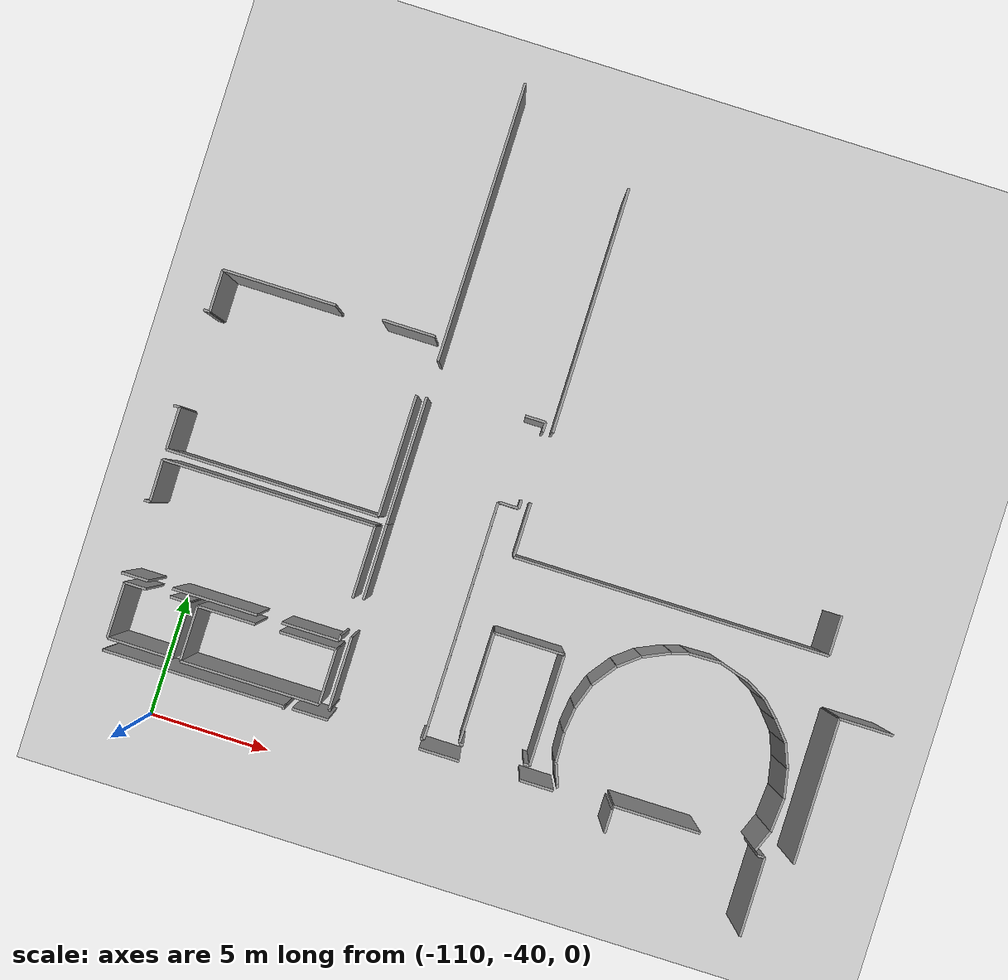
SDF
<sdf version="1.6">
 <world name="default">
  <model name="ground_plane">
   <static>1</static>
   <link name="link">
    <collision name="collision">
     <geometry><plane><normal>0 0 1</normal><size>100 100</size></plane></geometry>
     <surface><friction><ode><mu>100</mu><mu2>50</mu2></ode></friction></surface>
    </collision>
    <visual name="visual">
     <cast_shadows>0</cast_shadows>
     <geometry><plane><normal>0 0 1</normal><size>100 100</size></plane></geometry>
     <material>
      <script><uri>file://media/materials/scripts/gazebo.material</uri><name>Gazebo/Grey</name></script>
     </material>
    </visual>
   </link>
  </model>
  <model name="0510035520_A_40_1_103">
   <static>1</static>
   <link name="Wall_318">
    <collision name="Wall_318_Collision">
     <geometry><box><size>1.63755306121 0.1 2.5</size></box></geometry>
     <pose>0.818776530606 0 1.25 0 0 0</pose>
    </collision>
    <visual name="Wall_318_Visual">
     <pose>0.818776530606 0 1.25 0 0 0</pose>
     <geometry><box><size>1.63755306121 0.1 2.5</size></box></geometry>
     <material>
      <script><uri>file://media/materials/scripts/gazebo.material</uri><name>Gazebo/Grey</name></script>
      <ambient>1 1 1 1</ambient>
     </material>
    </visual>
    <pose>27.2904359744 -96.3057341007 0 0 0 -1.57079632679</pose>
   </link>
   <link name="Wall_319">
    <collision name="Wall_319_Collision">
     <geometry><box><size>12.8755528201 0.1 2.5</size></box></geometry>
     <pose>6.43777641005 0 1.25 0 0 0</pose>
    </collision>
    <visual name="Wall_319_Visual">
     <pose>6.43777641005 0 1.25 0 0 0</pose>
     <geometry><box><size>12.8755528201 0.1 2.5</size></box></geometry>
     <material>
      <script><uri>file://media/materials/scripts/gazebo.material</uri><name>Gazebo/Grey</name></script>
      <ambient>1 1 1 1</ambient>
     </material>
    </visual>
    <pose>27.2904359744 -97.9432871619 0 0 0 3.14159265359</pose>
   </link>
   <link name="Wall_320">
    <collision name="Wall_320_Collision">
     <geometry><box><size>2.21470675947 0.1 2.5</size></box></geometry>
     <pose>1.10735337974 0 1.25 0 0 0</pose>
    </collision>
    <visual name="Wall_320_Visual">
     <pose>1.10735337974 0 1.25 0 0 0</pose>
     <geometry><box><size>2.21470675947 0.1 2.5</size></box></geometry>
     <material>
      <script><uri>file://media/materials/scripts/gazebo.material</uri><name>Gazebo/Grey</name></script>
      <ambient>1 1 1 1</ambient>
     </material>
    </visual>
    <pose>14.4148831543 -97.9432871619 0 0 0 1.57079632679</pose>
   </link>
   <link name="Wall_321">
    <collision name="Wall_321_Collision">
     <geometry><box><size>9.96772142665 0.1 2.5</size></box></geometry>
     <pose>4.98386071332 0 1.25 0 0 0</pose>
    </collision>
    <visual name="Wall_321_Visual">
     <pose>4.98386071332 0 1.25 0 0 0</pose>
     <geometry><box><size>9.96772142665 0.1 2.5</size></box></geometry>
     <material>
      <script><uri>file://media/materials/scripts/gazebo.material</uri><name>Gazebo/Grey</name></script>
      <ambient>1 1 1 1</ambient>
     </material>
    </visual>
    <pose>14.4148831543 -92.8730147651 0 0 0 1.57270603343</pose>
   </link>
   <link name="Wall_322">
    <collision name="Wall_322_Collision">
     <geometry><box><size>8.67278760922 0.1 2.5</size></box></geometry>
     <pose>4.33639380461 0 1.25 0 0 0</pose>
    </collision>
    <visual name="Wall_322_Visual">
     <pose>4.33639380461 0 1.25 0 0 0</pose>
     <geometry><box><size>8.67278760922 0.1 2.5</size></box></geometry>
     <material>
      <script><uri>file://media/materials/scripts/gazebo.material</uri><name>Gazebo/Grey</name></script>
      <ambient>1 1 1 1</ambient>
     </material>
    </visual>
    <pose>0.227155919061 -98.4130811353 0 0 0 0.0</pose>
   </link>
   <link name="Wall_323">
    <collision name="Wall_323_Collision">
     <geometry><box><size>2.93576817406 0.1 2.5</size></box></geometry>
     <pose>1.46788408703 0 1.25 0 0 0</pose>
    </collision>
    <visual name="Wall_323_Visual">
     <pose>1.46788408703 0 1.25 0 0 0</pose>
     <geometry><box><size>2.93576817406 0.1 2.5</size></box></geometry>
     <material>
      <script><uri>file://media/materials/scripts/gazebo.material</uri><name>Gazebo/Grey</name></script>
      <ambient>1 1 1 1</ambient>
     </material>
    </visual>
    <pose>8.89994352828 -98.4130811353 0 0 0 -1.57079632679</pose>
   </link>
   <link name="Wall_324">
    <collision name="Wall_324_Collision">
     <geometry><box><size>0.229186363031 0.1 2.5</size></box></geometry>
     <pose>0.114593181515 0 1.25 0 0 0</pose>
    </collision>
    <visual name="Wall_324_Visual">
     <pose>0.114593181515 0 1.25 0 0 0</pose>
     <geometry><box><size>0.229186363031 0.1 2.5</size></box></geometry>
     <material>
      <script><uri>file://media/materials/scripts/gazebo.material</uri><name>Gazebo/Grey</name></script>
      <ambient>1 1 1 1</ambient>
     </material>
    </visual>
    <pose>8.89994352828 -102.867367593 0 0 0 -1.57079632679</pose>
   </link>
   <link name="Wall_325">
    <collision name="Wall_325_Collision">
     <geometry><box><size>2.35049269992 0.1 2.5</size></box></geometry>
     <pose>1.17524634996 0 1.25 0 0 0</pose>
    </collision>
    <visual name="Wall_325_Visual">
     <pose>1.17524634996 0 1.25 0 0 0</pose>
     <geometry><box><size>2.35049269992 0.1 2.5</size></box></geometry>
     <material>
      <script><uri>file://media/materials/scripts/gazebo.material</uri><name>Gazebo/Grey</name></script>
      <ambient>1 1 1 1</ambient>
     </material>
    </visual>
    <pose>8.89994352828 -103.096553956 0 0 0 3.14159265359</pose>
   </link>
   <link name="Wall_326">
    <collision name="Wall_326_Collision">
     <geometry><box><size>3.46089174561 0.1 2.5</size></box></geometry>
     <pose>1.73044587281 0 1.25 0 0 0</pose>
    </collision>
    <visual name="Wall_326_Visual">
     <pose>1.73044587281 0 1.25 0 0 0</pose>
     <geometry><box><size>3.46089174561 0.1 2.5</size></box></geometry>
     <material>
      <script><uri>file://media/materials/scripts/gazebo.material</uri><name>Gazebo/Grey</name></script>
      <ambient>1 1 1 1</ambient>
     </material>
    </visual>
    <pose>5.55478708891 -103.096553956 0 0 0 3.14159265359</pose>
   </link>
   <link name="Wall_327">
    <collision name="Wall_327_Collision">
     <geometry><box><size>1.09415549394 0.1 2.5</size></box></geometry>
     <pose>0.547077746969 0 1.25 0 0 0</pose>
    </collision>
    <visual name="Wall_327_Visual">
     <pose>0.547077746969 0 1.25 0 0 0</pose>
     <geometry><box><size>1.09415549394 0.1 2.5</size></box></geometry>
     <material>
      <script><uri>file://media/materials/scripts/gazebo.material</uri><name>Gazebo/Grey</name></script>
      <ambient>1 1 1 1</ambient>
     </material>
    </visual>
    <pose>1.10684576875 -103.096553956 0 0 0 3.14159265359</pose>
   </link>
   <link name="Wall_328">
    <collision name="Wall_328_Collision">
     <geometry><box><size>0.232485834481 0.1 2.5</size></box></geometry>
     <pose>0.11624291724 0 1.25 0 0 0</pose>
    </collision>
    <visual name="Wall_328_Visual">
     <pose>0.11624291724 0 1.25 0 0 0</pose>
     <geometry><box><size>0.232485834481 0.1 2.5</size></box></geometry>
     <material>
      <script><uri>file://media/materials/scripts/gazebo.material</uri><name>Gazebo/Grey</name></script>
      <ambient>1 1 1 1</ambient>
     </material>
    </visual>
    <pose>0.0126902748079 -100.13667426 0 0 0 0.0</pose>
   </link>
   <link name="Wall_329">
    <collision name="Wall_329_Collision">
     <geometry><box><size>1.72368732251 0.1 2.5</size></box></geometry>
     <pose>0.861843661253 0 1.25 0 0 0</pose>
    </collision>
    <visual name="Wall_329_Visual">
     <pose>0.861843661253 0 1.25 0 0 0</pose>
     <geometry><box><size>1.72368732251 0.1 2.5</size></box></geometry>
     <material>
      <script><uri>file://media/materials/scripts/gazebo.material</uri><name>Gazebo/Grey</name></script>
      <ambient>1 1 1 1</ambient>
     </material>
    </visual>
    <pose>0.245176109289 -100.13667426 0 0 0 1.58125095987</pose>
   </link>
   <link name="Wall_330">
    <collision name="Wall_330_Collision">
     <geometry><box><size>2.25836130481 0.1 2.5</size></box></geometry>
     <pose>1.12918065241 0 1.25 0 0 0</pose>
    </collision>
    <visual name="Wall_330_Visual">
     <pose>1.12918065241 0 1.25 0 0 0</pose>
     <geometry><box><size>2.25836130481 0.1 2.5</size></box></geometry>
     <material>
      <script><uri>file://media/materials/scripts/gazebo.material</uri><name>Gazebo/Grey</name></script>
      <ambient>1 1 1 1</ambient>
     </material>
    </visual>
    <pose>0.245176109289 -105.684862406 0 0 0 1.57079632679</pose>
   </link>
   <link name="Wall_331">
    <collision name="Wall_331_Collision">
     <geometry><box><size>0.873090906784 0.1 2.5</size></box></geometry>
     <pose>0.436545453392 0 1.25 0 0 0</pose>
    </collision>
    <visual name="Wall_331_Visual">
     <pose>0.436545453392 0 1.25 0 0 0</pose>
     <geometry><box><size>0.873090906784 0.1 2.5</size></box></geometry>
     <material>
      <script><uri>file://media/materials/scripts/gazebo.material</uri><name>Gazebo/Grey</name></script>
      <ambient>1 1 1 1</ambient>
     </material>
    </visual>
    <pose>0.245176109289 -103.426501101 0 0 0 0.0</pose>
   </link>
   <link name="Wall_332">
    <collision name="Wall_332_Collision">
     <geometry><box><size>0.786289427098 0.1 2.5</size></box></geometry>
     <pose>0.393144713549 0 1.25 0 0 0</pose>
    </collision>
    <visual name="Wall_332_Visual">
     <pose>0.393144713549 0 1.25 0 0 0</pose>
     <geometry><box><size>0.786289427098 0.1 2.5</size></box></geometry>
     <material>
      <script><uri>file://media/materials/scripts/gazebo.material</uri><name>Gazebo/Grey</name></script>
      <ambient>1 1 1 1</ambient>
     </material>
    </visual>
    <pose>2.09947906422 -103.426501101 0 0 0 0.0</pose>
   </link>
   <link name="Wall_333">
    <collision name="Wall_333_Collision">
     <geometry><box><size>2.2723206071 0.1 2.5</size></box></geometry>
     <pose>1.13616030355 0 1.25 0 0 0</pose>
    </collision>
    <visual name="Wall_333_Visual">
     <pose>1.13616030355 0 1.25 0 0 0</pose>
     <geometry><box><size>2.2723206071 0.1 2.5</size></box></geometry>
     <material>
      <script><uri>file://media/materials/scripts/gazebo.material</uri><name>Gazebo/Grey</name></script>
      <ambient>1 1 1 1</ambient>
     </material>
    </visual>
    <pose>2.88576849132 -103.426501101 0 0 0 -1.57079632679</pose>
   </link>
   <link name="Wall_334">
    <collision name="Wall_334_Collision">
     <geometry><box><size>2.6406292792 0.1 2.5</size></box></geometry>
     <pose>1.3203146396 0 1.25 0 0 0</pose>
    </collision>
    <visual name="Wall_334_Visual">
     <pose>1.3203146396 0 1.25 0 0 0</pose>
     <geometry><box><size>2.6406292792 0.1 2.5</size></box></geometry>
     <material>
      <script><uri>file://media/materials/scripts/gazebo.material</uri><name>Gazebo/Grey</name></script>
      <ambient>1 1 1 1</ambient>
     </material>
    </visual>
    <pose>2.88576849132 -105.698821708 0 0 0 3.13630627454</pose>
   </link>
   <link name="Wall_335">
    <collision name="Wall_335_Collision">
     <geometry><box><size>2.24871669596 0.1 2.5</size></box></geometry>
     <pose>1.12435834798 0 1.25 0 0 0</pose>
    </collision>
    <visual name="Wall_335_Visual">
     <pose>1.12435834798 0 1.25 0 0 0</pose>
     <geometry><box><size>2.24871669596 0.1 2.5</size></box></geometry>
     <material>
      <script><uri>file://media/materials/scripts/gazebo.material</uri><name>Gazebo/Grey</name></script>
      <ambient>1 1 1 1</ambient>
     </material>
    </visual>
    <pose>3.2240912177 -105.707958706 0 0 0 1.57079632679</pose>
   </link>
   <link name="Wall_336">
    <collision name="Wall_336_Collision">
     <geometry><box><size>2.36242155824 0.1 2.5</size></box></geometry>
     <pose>1.18121077912 0 1.25 0 0 0</pose>
    </collision>
    <visual name="Wall_336_Visual">
     <pose>1.18121077912 0 1.25 0 0 0</pose>
     <geometry><box><size>2.36242155824 0.1 2.5</size></box></geometry>
     <material>
      <script><uri>file://media/materials/scripts/gazebo.material</uri><name>Gazebo/Grey</name></script>
      <ambient>1 1 1 1</ambient>
     </material>
    </visual>
    <pose>3.2240912177 -103.45924201 0 0 0 0.0</pose>
   </link>
   <link name="Wall_337">
    <collision name="Wall_337_Collision">
     <geometry><box><size>2.31521373595 0.1 2.5</size></box></geometry>
     <pose>1.15760686798 0 1.25 0 0 0</pose>
    </collision>
    <visual name="Wall_337_Visual">
     <pose>1.15760686798 0 1.25 0 0 0</pose>
     <geometry><box><size>2.31521373595 0.1 2.5</size></box></geometry>
     <material>
      <script><uri>file://media/materials/scripts/gazebo.material</uri><name>Gazebo/Grey</name></script>
      <ambient>1 1 1 1</ambient>
     </material>
    </visual>
    <pose>6.57762323843 -103.45924201 0 0 0 0.0</pose>
   </link>
   <link name="Wall_338">
    <collision name="Wall_338_Collision">
     <geometry><box><size>2.25023952894 0.1 2.5</size></box></geometry>
     <pose>1.12511976447 0 1.25 0 0 0</pose>
    </collision>
    <visual name="Wall_338_Visual">
     <pose>1.12511976447 0 1.25 0 0 0</pose>
     <geometry><box><size>2.25023952894 0.1 2.5</size></box></geometry>
     <material>
      <script><uri>file://media/materials/scripts/gazebo.material</uri><name>Gazebo/Grey</name></script>
      <ambient>1 1 1 1</ambient>
     </material>
    </visual>
    <pose>8.89283697438 -103.45924201 0 0 0 -1.57079632679</pose>
   </link>
   <link name="Wall_339">
    <collision name="Wall_339_Collision">
     <geometry><box><size>5.66874596123 0.1 2.5</size></box></geometry>
     <pose>2.83437298062 0 1.25 0 0 0</pose>
    </collision>
    <visual name="Wall_339_Visual">
     <pose>2.83437298062 0 1.25 0 0 0</pose>
     <geometry><box><size>5.66874596123 0.1 2.5</size></box></geometry>
     <material>
      <script><uri>file://media/materials/scripts/gazebo.material</uri><name>Gazebo/Grey</name></script>
      <ambient>1 1 1 1</ambient>
     </material>
    </visual>
    <pose>8.89283697438 -105.709481539 0 0 0 3.14132401693</pose>
   </link>
   <link name="Wall_340">
    <collision name="Wall_340_Collision">
     <geometry><box><size>1.72511595739 0.1 2.5</size></box></geometry>
     <pose>0.862557978693 0 1.25 0 0 0</pose>
    </collision>
    <visual name="Wall_340_Visual">
     <pose>0.862557978693 0 1.25 0 0 0</pose>
     <geometry><box><size>1.72511595739 0.1 2.5</size></box></geometry>
     <material>
      <script><uri>file://media/materials/scripts/gazebo.material</uri><name>Gazebo/Grey</name></script>
      <ambient>1 1 1 1</ambient>
     </material>
    </visual>
    <pose>0.251775052189 -97.9948096776 0 0 0 1.57079632679</pose>
   </link>
   <link name="Wall_341">
    <collision name="Wall_341_Collision">
     <geometry><box><size>0.251775052189 0.1 2.5</size></box></geometry>
     <pose>0.125887526094 0 1.25 0 0 0</pose>
    </collision>
    <visual name="Wall_341_Visual">
     <pose>0.125887526094 0 1.25 0 0 0</pose>
     <geometry><box><size>0.251775052189 0.1 2.5</size></box></geometry>
     <material>
      <script><uri>file://media/materials/scripts/gazebo.material</uri><name>Gazebo/Grey</name></script>
      <ambient>1 1 1 1</ambient>
     </material>
    </visual>
    <pose>0.251775052189 -96.2696937202 0 0 0 3.14159265359</pose>
   </link>
   <link name="Wall_342">
    <collision name="Wall_342_Collision">
     <geometry><box><size>0.252028857685 0.1 2.5</size></box></geometry>
     <pose>0.126014428842 0 1.25 0 0 0</pose>
    </collision>
    <visual name="Wall_342_Visual">
     <pose>0.126014428842 0 1.25 0 0 0</pose>
     <geometry><box><size>0.252028857685 0.1 2.5</size></box></geometry>
     <material>
      <script><uri>file://media/materials/scripts/gazebo.material</uri><name>Gazebo/Grey</name></script>
      <ambient>1 1 1 1</ambient>
     </material>
    </visual>
    <pose>0.0 -92.3730179377 0 0 0 0.0</pose>
   </link>
   <link name="Wall_343">
    <collision name="Wall_343_Collision">
     <geometry><box><size>1.70938001662 0.1 2.5</size></box></geometry>
     <pose>0.854690008312 0 1.25 0 0 0</pose>
    </collision>
    <visual name="Wall_343_Visual">
     <pose>0.854690008312 0 1.25 0 0 0</pose>
     <geometry><box><size>1.70938001662 0.1 2.5</size></box></geometry>
     <material>
      <script><uri>file://media/materials/scripts/gazebo.material</uri><name>Gazebo/Grey</name></script>
      <ambient>1 1 1 1</ambient>
     </material>
    </visual>
    <pose>0.252028857685 -92.3730179377 0 0 0 1.57079632679</pose>
   </link>
   <link name="Wall_344">
    <collision name="Wall_344_Collision">
     <geometry><box><size>4.60327028382 0.1 2.5</size></box></geometry>
     <pose>2.30163514191 0 1.25 0 0 0</pose>
    </collision>
    <visual name="Wall_344_Visual">
     <pose>2.30163514191 0 1.25 0 0 0</pose>
     <geometry><box><size>4.60327028382 0.1 2.5</size></box></geometry>
     <material>
      <script><uri>file://media/materials/scripts/gazebo.material</uri><name>Gazebo/Grey</name></script>
      <ambient>1 1 1 1</ambient>
     </material>
    </visual>
    <pose>0.252028857685 -90.6636379211 0 0 0 0.0</pose>
   </link>
   <link name="Wall_345">
    <collision name="Wall_345_Collision">
     <geometry><box><size>2.14211838757 0.1 2.5</size></box></geometry>
     <pose>1.07105919379 0 1.25 0 0 0</pose>
    </collision>
    <visual name="Wall_345_Visual">
     <pose>1.07105919379 0 1.25 0 0 0</pose>
     <geometry><box><size>2.14211838757 0.1 2.5</size></box></geometry>
     <material>
      <script><uri>file://media/materials/scripts/gazebo.material</uri><name>Gazebo/Grey</name></script>
      <ambient>1 1 1 1</ambient>
     </material>
    </visual>
    <pose>6.76746974956 -90.6636379211 0 0 0 0.0</pose>
   </link>
   <link name="Wall_347">
    <collision name="Wall_347_Collision">
     <geometry><box><size>4.95199903554 0.1 2.5</size></box></geometry>
     <pose>2.47599951777 0 1.25 0 0 0</pose>
    </collision>
    <visual name="Wall_347_Visual">
     <pose>2.47599951777 0 1.25 0 0 0</pose>
     <geometry><box><size>4.95199903554 0.1 2.5</size></box></geometry>
     <material>
      <script><uri>file://media/materials/scripts/gazebo.material</uri><name>Gazebo/Grey</name></script>
      <ambient>1 1 1 1</ambient>
     </material>
    </visual>
    <pose>8.90958813713 -93.0636226927 0 0 0 -1.57079632679</pose>
   </link>
   <link name="Wall_348">
    <collision name="Wall_348_Collision">
     <geometry><box><size>8.65783809939 0.1 2.5</size></box></geometry>
     <pose>4.3289190497 0 1.25 0 0 0</pose>
    </collision>
    <visual name="Wall_348_Visual">
     <pose>4.3289190497 0 1.25 0 0 0</pose>
     <geometry><box><size>8.65783809939 0.1 2.5</size></box></geometry>
     <material>
      <script><uri>file://media/materials/scripts/gazebo.material</uri><name>Gazebo/Grey</name></script>
      <ambient>1 1 1 1</ambient>
     </material>
    </visual>
    <pose>8.90958813713 -98.0156217283 0 0 0 3.13918881207</pose>
   </link>
   <link name="Wall_397">
    <collision name="Wall_397_Collision">
     <geometry><box><size>5.18448487002 0.1 2.5</size></box></geometry>
     <pose>2.59224243501 0 1.25 0 0 0</pose>
    </collision>
    <visual name="Wall_397_Visual">
     <pose>2.59224243501 0 1.25 0 0 0</pose>
     <geometry><box><size>5.18448487002 0.1 2.5</size></box></geometry>
     <material>
      <script><uri>file://media/materials/scripts/gazebo.material</uri><name>Gazebo/Grey</name></script>
      <ambient>1 1 1 1</ambient>
     </material>
    </visual>
    <pose>9.31237745953 -98.2057220449 0 0 0 1.57079632679</pose>
   </link>
   <link name="Wall_398">
    <collision name="Wall_398_Collision">
     <geometry><box><size>11.3550040926 0.1 2.5</size></box></geometry>
     <pose>5.67750204631 0 1.25 0 0 0</pose>
    </collision>
    <visual name="Wall_398_Visual">
     <pose>5.67750204631 0 1.25 0 0 0</pose>
     <geometry><box><size>11.3550040926 0.1 2.5</size></box></geometry>
     <material>
      <script><uri>file://media/materials/scripts/gazebo.material</uri><name>Gazebo/Grey</name></script>
      <ambient>1 1 1 1</ambient>
     </material>
    </visual>
    <pose>9.31237745953 -91.5529723796 0 0 0 1.57079632679</pose>
   </link>
   <link name="Wall_428">
    <collision name="Wall_428_Collision">
     <geometry><box><size>0.833243443887 0.1 2.5</size></box></geometry>
     <pose>0.416621721943 0 1.25 0 0 0</pose>
    </collision>
    <visual name="Wall_428_Visual">
     <pose>0.416621721943 0 1.25 0 0 0</pose>
     <geometry><box><size>0.833243443887 0.1 2.5</size></box></geometry>
     <material>
      <script><uri>file://media/materials/scripts/gazebo.material</uri><name>Gazebo/Grey</name></script>
      <ambient>1 1 1 1</ambient>
     </material>
    </visual>
    <pose>13.2006776607 -92.5676867533 0 0 0 0.0</pose>
   </link>
   <link name="Wall_429">
    <collision name="Wall_429_Collision">
     <geometry><box><size>0.381723466222 0.1 2.5</size></box></geometry>
     <pose>0.190861733111 0 1.25 0 0 0</pose>
    </collision>
    <visual name="Wall_429_Visual">
     <pose>0.190861733111 0 1.25 0 0 0</pose>
     <geometry><box><size>0.381723466222 0.1 2.5</size></box></geometry>
     <material>
      <script><uri>file://media/materials/scripts/gazebo.material</uri><name>Gazebo/Grey</name></script>
      <ambient>1 1 1 1</ambient>
     </material>
    </visual>
    <pose>14.0339211046 -92.5676867533 0 0 0 -1.57079632679</pose>
   </link>
   <link name="Wall_430">
    <collision name="Wall_430_Collision">
     <geometry><box><size>0.348474946225 0.1 2.5</size></box></geometry>
     <pose>0.174237473112 0 1.25 0 0 0</pose>
    </collision>
    <visual name="Wall_430_Visual">
     <pose>0.174237473112 0 1.25 0 0 0</pose>
     <geometry><box><size>0.348474946225 0.1 2.5</size></box></geometry>
     <material>
      <script><uri>file://media/materials/scripts/gazebo.material</uri><name>Gazebo/Grey</name></script>
      <ambient>1 1 1 1</ambient>
     </material>
    </visual>
    <pose>14.0339211046 -95.7331489013 0 0 0 -1.57079632679</pose>
   </link>
   <link name="Wall_431">
    <collision name="Wall_431_Collision">
     <geometry><box><size>0.838573359306 0.1 2.5</size></box></geometry>
     <pose>0.419286679653 0 1.25 0 0 0</pose>
    </collision>
    <visual name="Wall_431_Visual">
     <pose>0.419286679653 0 1.25 0 0 0</pose>
     <geometry><box><size>0.838573359306 0.1 2.5</size></box></geometry>
     <material>
      <script><uri>file://media/materials/scripts/gazebo.material</uri><name>Gazebo/Grey</name></script>
      <ambient>1 1 1 1</ambient>
     </material>
    </visual>
    <pose>14.0339211046 -96.0816238476 0 0 0 3.14159265359</pose>
   </link>
   <link name="Wall_432">
    <collision name="Wall_432_Collision">
     <geometry><box><size>9.68978623232 0.1 2.5</size></box></geometry>
     <pose>4.84489311616 0 1.25 0 0 0</pose>
    </collision>
    <visual name="Wall_432_Visual">
     <pose>4.84489311616 0 1.25 0 0 0</pose>
     <geometry><box><size>9.68978623232 0.1 2.5</size></box></geometry>
     <material>
      <script><uri>file://media/materials/scripts/gazebo.material</uri><name>Gazebo/Grey</name></script>
      <ambient>1 1 1 1</ambient>
     </material>
    </visual>
    <pose>13.1953477453 -96.0816238476 0 0 0 -1.57079632679</pose>
   </link>
   <link name="Wall_433">
    <collision name="Wall_433_Collision">
     <geometry><box><size>0.143907716322 0.1 2.5</size></box></geometry>
     <pose>0.0719538581608 0 1.25 0 0 0</pose>
    </collision>
    <visual name="Wall_433_Visual">
     <pose>0.0719538581608 0 1.25 0 0 0</pose>
     <geometry><box><size>0.143907716322 0.1 2.5</size></box></geometry>
     <material>
      <script><uri>file://media/materials/scripts/gazebo.material</uri><name>Gazebo/Grey</name></script>
      <ambient>1 1 1 1</ambient>
     </material>
    </visual>
    <pose>13.1953477453 -105.77141008 0 0 0 3.14159265359</pose>
   </link>
   <link name="Wall_434">
    <collision name="Wall_434_Collision">
     <geometry><box><size>0.0814715642667 0.1 2.5</size></box></geometry>
     <pose>0.0407357821334 0 1.25 0 0 0</pose>
    </collision>
    <visual name="Wall_434_Visual">
     <pose>0.0407357821334 0 1.25 0 0 0</pose>
     <geometry><box><size>0.0814715642667 0.1 2.5</size></box></geometry>
     <material>
      <script><uri>file://media/materials/scripts/gazebo.material</uri><name>Gazebo/Grey</name></script>
      <ambient>1 1 1 1</ambient>
     </material>
    </visual>
    <pose>9.40501646563 -105.77141008 0 0 0 3.14159265359</pose>
   </link>
   <link name="Wall_435">
    <collision name="Wall_435_Collision">
     <geometry><box><size>2.96749386108 0.1 2.5</size></box></geometry>
     <pose>1.48374693054 0 1.25 0 0 0</pose>
    </collision>
    <visual name="Wall_435_Visual">
     <pose>1.48374693054 0 1.25 0 0 0</pose>
     <geometry><box><size>2.96749386108 0.1 2.5</size></box></geometry>
     <material>
      <script><uri>file://media/materials/scripts/gazebo.material</uri><name>Gazebo/Grey</name></script>
      <ambient>1 1 1 1</ambient>
     </material>
    </visual>
    <pose>9.32354490136 -105.77141008 0 0 0 1.57079632679</pose>
   </link>
   <link name="Wall_436">
    <collision name="Wall_436_Collision">
     <geometry><box><size>3.0781733149 0.1 2.5</size></box></geometry>
     <pose>1.53908665745 0 1.25 0 0 0</pose>
    </collision>
    <visual name="Wall_436_Visual">
     <pose>1.53908665745 0 1.25 0 0 0</pose>
     <geometry><box><size>3.0781733149 0.1 2.5</size></box></geometry>
     <material>
      <script><uri>file://media/materials/scripts/gazebo.material</uri><name>Gazebo/Grey</name></script>
      <ambient>1 1 1 1</ambient>
     </material>
    </visual>
    <pose>9.32354490136 -101.283875102 0 0 0 1.57442427922</pose>
   </link>
   <link name="Wall_437">
    <collision name="Wall_437_Collision">
     <geometry><box><size>7.37152683041 0.1 2.5</size></box></geometry>
     <pose>3.68576341521 0 1.25 0 0 0</pose>
    </collision>
    <visual name="Wall_437_Visual">
     <pose>3.68576341521 0 1.25 0 0 0</pose>
     <geometry><box><size>7.37152683041 0.1 2.5</size></box></geometry>
     <material>
      <script><uri>file://media/materials/scripts/gazebo.material</uri><name>Gazebo/Grey</name></script>
      <ambient>1 1 1 1</ambient>
     </material>
    </visual>
    <pose>0.236292916923 -106.186382066 0 0 0 0.0</pose>
   </link>
   <link name="Wall_438">
    <collision name="Wall_438_Collision">
     <geometry><box><size>0.11167441831 0.1 2.5</size></box></geometry>
     <pose>0.0558372091548 0 1.25 0 0 0</pose>
    </collision>
    <visual name="Wall_438_Visual">
     <pose>0.0558372091548 0 1.25 0 0 0</pose>
     <geometry><box><size>0.11167441831 0.1 2.5</size></box></geometry>
     <material>
      <script><uri>file://media/materials/scripts/gazebo.material</uri><name>Gazebo/Grey</name></script>
      <ambient>1 1 1 1</ambient>
     </material>
    </visual>
    <pose>7.60781974734 -106.186382066 0 0 0 -1.57079632679</pose>
   </link>
   <link name="Wall_444">
    <collision name="Wall_444_Collision">
     <geometry><box><size>0.0300649724709 0.1 2.5</size></box></geometry>
     <pose>0.0150324862355 0 1.25 0 0 0</pose>
    </collision>
    <visual name="Wall_444_Visual">
     <pose>0.0150324862355 0 1.25 0 0 0</pose>
     <geometry><box><size>0.0300649724709 0.1 2.5</size></box></geometry>
     <material>
      <script><uri>file://media/materials/scripts/gazebo.material</uri><name>Gazebo/Grey</name></script>
      <ambient>1 1 1 1</ambient>
     </material>
    </visual>
    <pose>0.206851479369 -106.192473398 0 0 0 0.204017979592</pose>
   </link>
   <link name="Wall_499">
    <collision name="Wall_499_Collision">
     <geometry><box><size>4.47332186979 0.1 2.5</size></box></geometry>
     <pose>2.23666093489 0 1.25 0 0 0</pose>
    </collision>
    <visual name="Wall_499_Visual">
     <pose>2.23666093489 0 1.25 0 0 0</pose>
     <geometry><box><size>4.47332186979 0.1 2.5</size></box></geometry>
     <material>
      <script><uri>file://media/materials/scripts/gazebo.material</uri><name>Gazebo/Grey</name></script>
      <ambient>1 1 1 1</ambient>
     </material>
    </visual>
    <pose>14.5664050355 -105.461259764 0 0 0 1.57079632679</pose>
   </link>
   <link name="Wall_500">
    <collision name="Wall_500_Collision">
     <geometry><box><size>2.86901732857 0.1 2.5</size></box></geometry>
     <pose>1.43450866429 0 1.25 0 0 0</pose>
    </collision>
    <visual name="Wall_500_Visual">
     <pose>1.43450866429 0 1.25 0 0 0</pose>
     <geometry><box><size>2.86901732857 0.1 2.5</size></box></geometry>
     <material>
      <script><uri>file://media/materials/scripts/gazebo.material</uri><name>Gazebo/Grey</name></script>
      <ambient>1 1 1 1</ambient>
     </material>
    </visual>
    <pose>14.5664050355 -100.987937894 0 0 0 0.0</pose>
   </link>
   <link name="Wall_501">
    <collision name="Wall_501_Collision">
     <geometry><box><size>4.53068191192 0.1 2.5</size></box></geometry>
     <pose>2.26534095596 0 1.25 0 0 0</pose>
    </collision>
    <visual name="Wall_501_Visual">
     <pose>2.26534095596 0 1.25 0 0 0</pose>
     <geometry><box><size>4.53068191192 0.1 2.5</size></box></geometry>
     <material>
      <script><uri>file://media/materials/scripts/gazebo.material</uri><name>Gazebo/Grey</name></script>
      <ambient>1 1 1 1</ambient>
     </material>
    </visual>
    <pose>17.4354223641 -100.987937894 0 0 0 -1.57079632679</pose>
   </link>
   <link name="Wall_502">
    <collision name="Wall_502_Collision">
     <geometry><box><size>0.248221775243 0.1 2.5</size></box></geometry>
     <pose>0.124110887621 0 1.25 0 0 0</pose>
    </collision>
    <visual name="Wall_502_Visual">
     <pose>0.124110887621 0 1.25 0 0 0</pose>
     <geometry><box><size>0.248221775243 0.1 2.5</size></box></geometry>
     <material>
      <script><uri>file://media/materials/scripts/gazebo.material</uri><name>Gazebo/Grey</name></script>
      <ambient>1 1 1 1</ambient>
     </material>
    </visual>
    <pose>17.4354223641 -105.518619806 0 0 0 3.14159265359</pose>
   </link>
   <link name="Wall_503">
    <collision name="Wall_503_Collision">
     <geometry><box><size>0.162943128533 0.1 2.5</size></box></geometry>
     <pose>0.0814715642667 0 1.25 0 0 0</pose>
    </collision>
    <visual name="Wall_503_Visual">
     <pose>0.0814715642667 0 1.25 0 0 0</pose>
     <geometry><box><size>0.162943128533 0.1 2.5</size></box></geometry>
     <material>
      <script><uri>file://media/materials/scripts/gazebo.material</uri><name>Gazebo/Grey</name></script>
      <ambient>1 1 1 1</ambient>
     </material>
    </visual>
    <pose>14.731378608 -105.518619806 0 0 0 3.14159265359</pose>
   </link>
   <link name="Wall_504">
    <collision name="Wall_504_Collision">
     <geometry><box><size>0.0573959679426 0.1 2.5</size></box></geometry>
     <pose>0.0286979839713 0 1.25 0 0 0</pose>
    </collision>
    <visual name="Wall_504_Visual">
     <pose>0.0286979839713 0 1.25 0 0 0</pose>
     <geometry><box><size>0.0573959679426 0.1 2.5</size></box></geometry>
     <material>
      <script><uri>file://media/materials/scripts/gazebo.material</uri><name>Gazebo/Grey</name></script>
      <ambient>1 1 1 1</ambient>
     </material>
    </visual>
    <pose>14.5684354795 -105.518619806 0 0 0 1.60617978292</pose>
   </link>
   <link name="Wall_505">
    <collision name="Wall_505_Collision">
     <geometry><box><size>0.853927903467 0.1 2.5</size></box></geometry>
     <pose>0.426963951733 0 1.25 0 0 0</pose>
    </collision>
    <visual name="Wall_505_Visual">
     <pose>0.426963951733 0 1.25 0 0 0</pose>
     <geometry><box><size>0.853927903467 0.1 2.5</size></box></geometry>
     <material>
      <script><uri>file://media/materials/scripts/gazebo.material</uri><name>Gazebo/Grey</name></script>
      <ambient>1 1 1 1</ambient>
     </material>
    </visual>
    <pose>18.6838915997 -105.880800249 0 0 0 1.93899444432</pose>
   </link>
   <link name="Wall_506">
    <collision name="Wall_506_Collision">
     <geometry><box><size>1.21444264385 0.1 2.5</size></box></geometry>
     <pose>0.607221321923 0 1.25 0 0 0</pose>
    </collision>
    <visual name="Wall_506_Visual">
     <pose>0.607221321923 0 1.25 0 0 0</pose>
     <geometry><box><size>1.21444264385 0.1 2.5</size></box></geometry>
     <material>
      <script><uri>file://media/materials/scripts/gazebo.material</uri><name>Gazebo/Grey</name></script>
      <ambient>1 1 1 1</ambient>
     </material>
    </visual>
    <pose>18.3765331438 -105.084104796 0 0 0 1.61135136347</pose>
   </link>
   <link name="Wall_507">
    <collision name="Wall_507_Collision">
     <geometry><box><size>1.04169657272 0.1 2.5</size></box></geometry>
     <pose>0.52084828636 0 1.25 0 0 0</pose>
    </collision>
    <visual name="Wall_507_Visual">
     <pose>0.52084828636 0 1.25 0 0 0</pose>
     <geometry><box><size>1.04169657272 0.1 2.5</size></box></geometry>
     <material>
      <script><uri>file://media/materials/scripts/gazebo.material</uri><name>Gazebo/Grey</name></script>
      <ambient>1 1 1 1</ambient>
     </material>
    </visual>
    <pose>18.3272948776 -103.870660719 0 0 0 1.44719684737</pose>
   </link>
   <link name="Wall_508">
    <collision name="Wall_508_Collision">
     <geometry><box><size>1.10812194647 0.1 2.5</size></box></geometry>
     <pose>0.554060973236 0 1.25 0 0 0</pose>
    </collision>
    <visual name="Wall_508_Visual">
     <pose>0.554060973236 0 1.25 0 0 0</pose>
     <geometry><box><size>1.10812194647 0.1 2.5</size></box></geometry>
     <material>
      <script><uri>file://media/materials/scripts/gazebo.material</uri><name>Gazebo/Grey</name></script>
      <ambient>1 1 1 1</ambient>
     </material>
    </visual>
    <pose>18.4557204586 -102.836910933 0 0 0 1.23977470673</pose>
   </link>
   <link name="Wall_509">
    <collision name="Wall_509_Collision">
     <geometry><box><size>1.20369219951 0.1 2.5</size></box></geometry>
     <pose>0.601846099753 0 1.25 0 0 0</pose>
    </collision>
    <visual name="Wall_509_Visual">
     <pose>0.601846099753 0 1.25 0 0 0</pose>
     <geometry><box><size>1.20369219951 0.1 2.5</size></box></geometry>
     <material>
      <script><uri>file://media/materials/scripts/gazebo.material</uri><name>Gazebo/Grey</name></script>
      <ambient>1 1 1 1</ambient>
     </material>
    </visual>
    <pose>18.8158704577 -101.78894804 0 0 0 0.942899181302</pose>
   </link>
   <link name="Wall_510">
    <collision name="Wall_510_Collision">
     <geometry><box><size>1.03660888643 0.1 2.5</size></box></geometry>
     <pose>0.518304443213 0 1.25 0 0 0</pose>
    </collision>
    <visual name="Wall_510_Visual">
     <pose>0.518304443213 0 1.25 0 0 0</pose>
     <geometry><box><size>1.03660888643 0.1 2.5</size></box></geometry>
     <material>
      <script><uri>file://media/materials/scripts/gazebo.material</uri><name>Gazebo/Grey</name></script>
      <ambient>1 1 1 1</ambient>
     </material>
    </visual>
    <pose>19.52297257 -100.814842545 0 0 0 0.676805790926</pose>
   </link>
   <link name="Wall_511">
    <collision name="Wall_511_Collision">
     <geometry><box><size>1.16839251957 0.1 2.5</size></box></geometry>
     <pose>0.584196259787 0 1.25 0 0 0</pose>
    </collision>
    <visual name="Wall_511_Visual">
     <pose>0.584196259787 0 1.25 0 0 0</pose>
     <geometry><box><size>1.16839251957 0.1 2.5</size></box></geometry>
     <material>
      <script><uri>file://media/materials/scripts/gazebo.material</uri><name>Gazebo/Grey</name></script>
      <ambient>1 1 1 1</ambient>
     </material>
    </visual>
    <pose>20.3310892697 -100.165608086 0 0 0 0.433333251699</pose>
   </link>
   <link name="Wall_512">
    <collision name="Wall_512_Collision">
     <geometry><box><size>0.693222171958 0.1 2.5</size></box></geometry>
     <pose>0.346611085979 0 1.25 0 0 0</pose>
    </collision>
    <visual name="Wall_512_Visual">
     <pose>0.346611085979 0 1.25 0 0 0</pose>
     <geometry><box><size>0.693222171958 0.1 2.5</size></box></geometry>
     <material>
      <script><uri>file://media/materials/scripts/gazebo.material</uri><name>Gazebo/Grey</name></script>
      <ambient>1 1 1 1</ambient>
     </material>
    </visual>
    <pose>21.3914886327 -99.6750020622 0 0 0 0.273220241816</pose>
   </link>
   <link name="Wall_513">
    <collision name="Wall_513_Collision">
     <geometry><box><size>1.29909787225 0.1 2.5</size></box></geometry>
     <pose>0.649548936126 0 1.25 0 0 0</pose>
    </collision>
    <visual name="Wall_513_Visual">
     <pose>0.649548936126 0 1.25 0 0 0</pose>
     <geometry><box><size>1.29909787225 0.1 2.5</size></box></geometry>
     <material>
      <script><uri>file://media/materials/scripts/gazebo.material</uri><name>Gazebo/Grey</name></script>
      <ambient>1 1 1 1</ambient>
     </material>
    </visual>
    <pose>22.0589970876 -99.4879474115 0 0 0 0.0240328939434</pose>
   </link>
   <link name="Wall_514">
    <collision name="Wall_514_Collision">
     <geometry><box><size>1.27275401603 0.1 2.5</size></box></geometry>
     <pose>0.636377008014 0 1.25 0 0 0</pose>
    </collision>
    <visual name="Wall_514_Visual">
     <pose>0.636377008014 0 1.25 0 0 0</pose>
     <geometry><box><size>1.27275401603 0.1 2.5</size></box></geometry>
     <material>
      <script><uri>file://media/materials/scripts/gazebo.material</uri><name>Gazebo/Grey</name></script>
      <ambient>1 1 1 1</ambient>
     </material>
    </visual>
    <pose>23.3577198114 -99.4567293355 0 0 0 -0.299803782254</pose>
   </link>
   <link name="Wall_515">
    <collision name="Wall_515_Collision">
     <geometry><box><size>0.943697881114 0.1 2.5</size></box></geometry>
     <pose>0.471848940557 0 1.25 0 0 0</pose>
    </collision>
    <visual name="Wall_515_Visual">
     <pose>0.471848940557 0 1.25 0 0 0</pose>
     <geometry><box><size>0.943697881114 0.1 2.5</size></box></geometry>
     <material>
      <script><uri>file://media/materials/scripts/gazebo.material</uri><name>Gazebo/Grey</name></script>
      <ambient>1 1 1 1</ambient>
     </material>
    </visual>
    <pose>24.5737019435 -99.8326152753 0 0 0 -0.517678323327</pose>
   </link>
   <link name="Wall_516">
    <collision name="Wall_516_Collision">
     <geometry><box><size>0.874550249256 0.1 2.5</size></box></geometry>
     <pose>0.437275124628 0 1.25 0 0 0</pose>
    </collision>
    <visual name="Wall_516_Visual">
     <pose>0.437275124628 0 1.25 0 0 0</pose>
     <geometry><box><size>0.874550249256 0.1 2.5</size></box></geometry>
     <material>
      <script><uri>file://media/materials/scripts/gazebo.material</uri><name>Gazebo/Grey</name></script>
      <ambient>1 1 1 1</ambient>
     </material>
    </visual>
    <pose>25.3937475016 -100.299617388 0 0 0 -0.764875593527</pose>
   </link>
   <link name="Wall_517">
    <collision name="Wall_517_Collision">
     <geometry><box><size>1.01144958092 0.1 2.5</size></box></geometry>
     <pose>0.505724790458 0 1.25 0 0 0</pose>
    </collision>
    <visual name="Wall_517_Visual">
     <pose>0.505724790458 0 1.25 0 0 0</pose>
     <geometry><box><size>1.01144958092 0.1 2.5</size></box></geometry>
     <material>
      <script><uri>file://media/materials/scripts/gazebo.material</uri><name>Gazebo/Grey</name></script>
      <ambient>1 1 1 1</ambient>
     </material>
    </visual>
    <pose>26.0247079651 -100.905197302 0 0 0 -0.86497345496</pose>
   </link>
   <link name="Wall_518">
    <collision name="Wall_518_Collision">
     <geometry><box><size>0.991109812547 0.1 2.5</size></box></geometry>
     <pose>0.495554906273 0 1.25 0 0 0</pose>
    </collision>
    <visual name="Wall_518_Visual">
     <pose>0.495554906273 0 1.25 0 0 0</pose>
     <geometry><box><size>0.991109812547 0.1 2.5</size></box></geometry>
     <material>
      <script><uri>file://media/materials/scripts/gazebo.material</uri><name>Gazebo/Grey</name></script>
      <ambient>1 1 1 1</ambient>
     </material>
    </visual>
    <pose>26.6807951726 -101.674989372 0 0 0 -1.19257250789</pose>
   </link>
   <link name="Wall_519">
    <collision name="Wall_519_Collision">
     <geometry><box><size>1.18540103558 0.1 2.5</size></box></geometry>
     <pose>0.592700517792 0 1.25 0 0 0</pose>
    </collision>
    <visual name="Wall_519_Visual">
     <pose>0.592700517792 0 1.25 0 0 0</pose>
     <geometry><box><size>1.18540103558 0.1 2.5</size></box></geometry>
     <material>
      <script><uri>file://media/materials/scripts/gazebo.material</uri><name>Gazebo/Grey</name></script>
      <ambient>1 1 1 1</ambient>
     </material>
    </visual>
    <pose>27.0467826981 -102.596049517 0 0 0 -1.37470246682</pose>
   </link>
   <link name="Wall_520">
    <collision name="Wall_520_Collision">
     <geometry><box><size>1.39183826283 0.1 2.5</size></box></geometry>
     <pose>0.695919131416 0 1.25 0 0 0</pose>
    </collision>
    <visual name="Wall_520_Visual">
     <pose>0.695919131416 0 1.25 0 0 0</pose>
     <geometry><box><size>1.39183826283 0.1 2.5</size></box></geometry>
     <material>
      <script><uri>file://media/materials/scripts/gazebo.material</uri><name>Gazebo/Grey</name></script>
      <ambient>1 1 1 1</ambient>
     </material>
    </visual>
    <pose>27.2777456996 -103.758732495 0 0 0 -1.6469108847</pose>
   </link>
   <link name="Wall_521">
    <collision name="Wall_521_Collision">
     <geometry><box><size>0.954959731317 0.1 2.5</size></box></geometry>
     <pose>0.477479865658 0 1.25 0 0 0</pose>
    </collision>
    <visual name="Wall_521_Visual">
     <pose>0.477479865658 0 1.25 0 0 0</pose>
     <geometry><box><size>0.954959731317 0.1 2.5</size></box></geometry>
     <material>
      <script><uri>file://media/materials/scripts/gazebo.material</uri><name>Gazebo/Grey</name></script>
      <ambient>1 1 1 1</ambient>
     </material>
    </visual>
    <pose>27.1719088077 -105.146540948 0 0 0 -1.94947662756</pose>
   </link>
   <link name="Wall_522">
    <collision name="Wall_522_Collision">
     <geometry><box><size>3.54033286591 0.1 2.5</size></box></geometry>
     <pose>1.77016643295 0 1.25 0 0 0</pose>
    </collision>
    <visual name="Wall_522_Visual">
     <pose>1.77016643295 0 1.25 0 0 0</pose>
     <geometry><box><size>3.54033286591 0.1 2.5</size></box></geometry>
     <material>
      <script><uri>file://media/materials/scripts/gazebo.material</uri><name>Gazebo/Grey</name></script>
      <ambient>1 1 1 1</ambient>
     </material>
    </visual>
    <pose>24.5711638886 -106.033844963 0 0 0 3.14159265359</pose>
   </link>
   <link name="Wall_523">
    <collision name="Wall_523_Collision">
     <geometry><box><size>0.161084132116 0.1 2.5</size></box></geometry>
     <pose>0.0805420660582 0 1.25 0 0 0</pose>
    </collision>
    <visual name="Wall_523_Visual">
     <pose>0.0805420660582 0 1.25 0 0 0</pose>
     <geometry><box><size>0.161084132116 0.1 2.5</size></box></geometry>
     <material>
      <script><uri>file://media/materials/scripts/gazebo.material</uri><name>Gazebo/Grey</name></script>
      <ambient>1 1 1 1</ambient>
     </material>
    </visual>
    <pose>18.7341450879 -106.033844963 0 0 0 1.88806260632</pose>
   </link>
   <link name="Wall_524">
    <collision name="Wall_524_Collision">
     <geometry><box><size>1.45532071497 0.1 2.5</size></box></geometry>
     <pose>0.727660357485 0 1.25 0 0 0</pose>
    </collision>
    <visual name="Wall_524_Visual">
     <pose>0.727660357485 0 1.25 0 0 0</pose>
     <geometry><box><size>1.45532071497 0.1 2.5</size></box></geometry>
     <material>
      <script><uri>file://media/materials/scripts/gazebo.material</uri><name>Gazebo/Grey</name></script>
      <ambient>1 1 1 1</ambient>
     </material>
    </visual>
    <pose>7.94969575066 -106.169377098 0 0 0 0.0</pose>
   </link>
   <link name="Wall_525">
    <collision name="Wall_525_Collision">
     <geometry><box><size>1.64897430854 0.1 2.5</size></box></geometry>
     <pose>0.824487154269 0 1.25 0 0 0</pose>
    </collision>
    <visual name="Wall_525_Visual">
     <pose>0.824487154269 0 1.25 0 0 0</pose>
     <geometry><box><size>1.64897430854 0.1 2.5</size></box></geometry>
     <material>
      <script><uri>file://media/materials/scripts/gazebo.material</uri><name>Gazebo/Grey</name></script>
      <ambient>1 1 1 1</ambient>
     </material>
    </visual>
    <pose>13.112860959 -106.169377098 0 0 0 0.0</pose>
   </link>
   <link name="Wall_526">
    <collision name="Wall_526_Collision">
     <geometry><box><size>1.37664101116 0.1 2.5</size></box></geometry>
     <pose>0.688320505581 0 1.25 0 0 0</pose>
    </collision>
    <visual name="Wall_526_Visual">
     <pose>0.688320505581 0 1.25 0 0 0</pose>
     <geometry><box><size>1.37664101116 0.1 2.5</size></box></geometry>
     <material>
      <script><uri>file://media/materials/scripts/gazebo.material</uri><name>Gazebo/Grey</name></script>
      <ambient>1 1 1 1</ambient>
     </material>
    </visual>
    <pose>17.2346622166 -106.169377098 0 0 0 0.0</pose>
   </link>
   <link name="Wall_527">
    <collision name="Wall_527_Collision">
     <geometry><box><size>0.972836466774 0.1 2.5</size></box></geometry>
     <pose>0.486418233387 0 1.25 0 0 0</pose>
    </collision>
    <visual name="Wall_527_Visual">
     <pose>0.486418233387 0 1.25 0 0 0</pose>
     <geometry><box><size>0.972836466774 0.1 2.5</size></box></geometry>
     <material>
      <script><uri>file://media/materials/scripts/gazebo.material</uri><name>Gazebo/Grey</name></script>
      <ambient>1 1 1 1</ambient>
     </material>
    </visual>
    <pose>21.0112879994 -106.169377098 0 0 0 -1.57079632679</pose>
   </link>
   <link name="Wall_530">
    <collision name="Wall_530_Collision">
     <geometry><box><size>0.28933826562 0.1 2.5</size></box></geometry>
     <pose>0.14466913281 0 1.25 0 0 0</pose>
    </collision>
    <visual name="Wall_530_Visual">
     <pose>0.14466913281 0 1.25 0 0 0</pose>
     <geometry><box><size>0.28933826562 0.1 2.5</size></box></geometry>
     <material>
      <script><uri>file://media/materials/scripts/gazebo.material</uri><name>Gazebo/Grey</name></script>
      <ambient>1 1 1 1</ambient>
     </material>
    </visual>
    <pose>26.9620116624 -106.192473398 0 0 0 0.0</pose>
   </link>
   <link name="Wall_531">
    <collision name="Wall_531_Collision">
     <geometry><box><size>3.21393899785 0.1 2.5</size></box></geometry>
     <pose>1.60696949892 0 1.25 0 0 0</pose>
    </collision>
    <visual name="Wall_531_Visual">
     <pose>1.60696949892 0 1.25 0 0 0</pose>
     <geometry><box><size>3.21393899785 0.1 2.5</size></box></geometry>
     <material>
      <script><uri>file://media/materials/scripts/gazebo.material</uri><name>Gazebo/Grey</name></script>
      <ambient>1 1 1 1</ambient>
     </material>
    </visual>
    <pose>27.251349928 -106.192473398 0 0 0 -1.57079632679</pose>
   </link>
   <link name="Wall_546">
    <collision name="Wall_546_Collision">
     <geometry><box><size>5.92788116827 0.1 2.5</size></box></geometry>
     <pose>2.96394058413 0 1.25 0 0 0</pose>
    </collision>
    <visual name="Wall_546_Visual">
     <pose>2.96394058413 0 1.25 0 0 0</pose>
     <geometry><box><size>5.92788116827 0.1 2.5</size></box></geometry>
     <material>
      <script><uri>file://media/materials/scripts/gazebo.material</uri><name>Gazebo/Grey</name></script>
      <ambient>1 1 1 1</ambient>
     </material>
    </visual>
    <pose>28.403373075 -106.084098451 0 0 0 1.57079632679</pose>
   </link>
   <link name="Wall_547">
    <collision name="Wall_547_Collision">
     <geometry><box><size>2.212930121 0.1 2.5</size></box></geometry>
     <pose>1.1064650605 0 1.25 0 0 0</pose>
    </collision>
    <visual name="Wall_547_Visual">
     <pose>1.1064650605 0 1.25 0 0 0</pose>
     <geometry><box><size>2.212930121 0.1 2.5</size></box></geometry>
     <material>
      <script><uri>file://media/materials/scripts/gazebo.material</uri><name>Gazebo/Grey</name></script>
      <ambient>1 1 1 1</ambient>
     </material>
    </visual>
    <pose>28.403373075 -100.156217283 0 0 0 0.0</pose>
   </link>
   <pose>-112.2 68.6448144365 0 0 0 0</pose>
  </model>
 </world>
</sdf>
